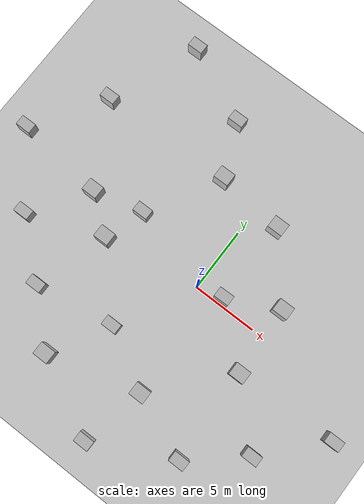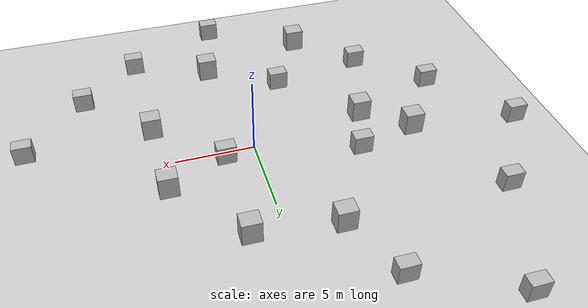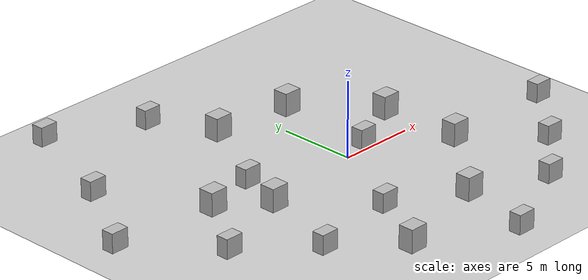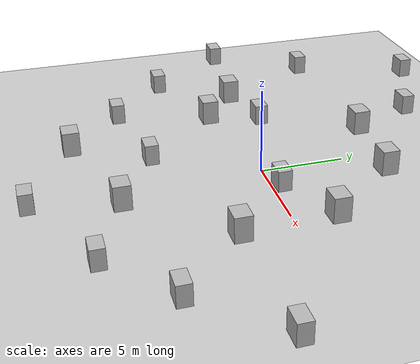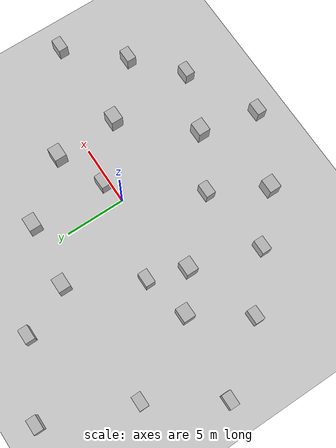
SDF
<sdf version="1.7">
 <world name="default">
  <light name="sun" type="directional">
   <pose>0 0 10 0 -0 0</pose>
   <diffuse>0.8 0.8 0.8 1</diffuse>
   <specular>0.2 0.2 0.2 1</specular>
   <attenuation>
    <range>1000</range>
    <constant>0.9</constant>
    <linear>0.01</linear>
    <quadratic>0.001</quadratic>
   </attenuation>
   <direction>-0.5 0.1 -0.9</direction>
   <spot><inner_angle>0</inner_angle><outer_angle>0</outer_angle><falloff>0</falloff></spot>
  </light>
  <model name="ground_plane">
   <static>1</static>
   <link name="link">
    <collision name="collision">
     <geometry><plane><normal>0 0 1</normal><size>100 100</size></plane></geometry>
     <surface><friction><ode><mu>100</mu><mu2>50</mu2></ode></friction></surface>
    </collision>
    <visual name="visual">
     <cast_shadows>0</cast_shadows>
     <geometry><plane><normal>0 0 1</normal><size>100 100</size></plane></geometry>
     <material>
      <script><uri>file://media/materials/scripts/gazebo.material</uri><name>Gazebo/Grey</name></script>
     </material>
    </visual>
    <kinematic>1</kinematic>
   </link>
  </model>
  <gravity>0 0 -9.8</gravity>
  <magnetic_field>6e-06 2.3e-05 -4.2e-05</magnetic_field>
  <atmosphere type="adiabatic"/>
  <physics type="ode">
   <max_step_size>0.001</max_step_size>
   <real_time_factor>1</real_time_factor>
   <real_time_update_rate>1000</real_time_update_rate>
  </physics>
  <scene><ambient>0.4 0.4 0.4 1</ambient><background>0.7 0.7 0.7 1</background><shadows>1</shadows></scene>
  <spherical_coordinates>
   <surface_model>EARTH_WGS84</surface_model>
   <latitude_deg>0</latitude_deg>
   <longitude_deg>0</longitude_deg>
   <elevation>0</elevation>
   <heading_deg>0</heading_deg>
  </spherical_coordinates>
  <model name="Big box">
   <pose>1.99012 6.88778 0.7495 -0.001246 2e-06 -0.006343</pose>
   <static>0</static>
   <link name="link">
    <inertial>
     <mass>40</mass>
     <inertia><ixx>1</ixx><ixy>0</ixy><ixz>0</ixz><iyy>1</iyy><iyz>0</iyz><izz>1</izz></inertia>
    </inertial>
    <collision name="collision">
     <geometry><box><size>1.2 0.8 1.5</size></box></geometry>
     <surface><contact><ode><max_vel>0.1</max_vel><min_depth>0.001</min_depth></ode></contact></surface>
    </collision>
    <visual name="visual"><geometry><mesh><uri>model://big_box/meshes/big_box.dae</uri></mesh></geometry></visual>
    <kinematic>1</kinematic>
   </link>
  </model>
  <model name="Big box_0">
   <pose>-7.40687 -1.17355 0.749499 0 -0.000832 -2e-06</pose>
   <static>0</static>
   <link name="link">
    <inertial>
     <mass>40</mass>
     <inertia><ixx>1</ixx><ixy>0</ixy><ixz>0</ixz><iyy>1</iyy><iyz>0</iyz><izz>1</izz></inertia>
    </inertial>
    <collision name="collision">
     <geometry><box><size>1.2 0.8 1.5</size></box></geometry>
     <surface><contact><ode><max_vel>0.1</max_vel><min_depth>0.001</min_depth></ode></contact></surface>
    </collision>
    <visual name="visual"><geometry><mesh><uri>model://big_box/meshes/big_box.dae</uri></mesh></geometry></visual>
    <kinematic>1</kinematic>
   </link>
  </model>
  <model name="Big box 4_0">
   <pose>-3.12253 -5.82703 0.624495 0 0.000826 1e-06</pose>
   <static>0</static>
   <link name="link">
    <inertial>
     <mass>40</mass>
     <inertia><ixx>1</ixx><ixy>0</ixy><ixz>0</ixz><iyy>1</iyy><iyz>0</iyz><izz>1</izz></inertia>
    </inertial>
    <collision name="collision">
     <geometry><box><size>1.2 0.8 1.25</size></box></geometry>
     <surface><contact><ode><max_vel>0.1</max_vel><min_depth>0.001</min_depth></ode></contact></surface>
    </collision>
    <visual name="visual">
     <geometry><mesh><uri>model://big_box4/meshes/big_box.dae</uri></mesh></geometry>
    </visual>
    <kinematic>1</kinematic>
   </link>
  </model>
  <model name="Big box_2">
   <pose>-3.25527 7.48275 0.7495 -0 -0.000834 -1e-06</pose>
   <static>0</static>
   <link name="link">
    <inertial>
     <mass>40</mass>
     <inertia><ixx>1</ixx><ixy>0</ixy><ixz>0</ixz><iyy>1</iyy><iyz>0</iyz><izz>1</izz></inertia>
    </inertial>
    <collision name="collision">
     <geometry><box><size>1.2 0.8 1.5</size></box></geometry>
     <surface><contact><ode><max_vel>0.1</max_vel><min_depth>0.001</min_depth></ode></contact></surface>
    </collision>
    <visual name="visual"><geometry><mesh><uri>model://big_box/meshes/big_box.dae</uri></mesh></geometry></visual>
    <kinematic>1</kinematic>
   </link>
  </model>
  <model name="Big box_3">
   <pose>5.98473 -3.05307 0.749497 0 -0.00083 0</pose>
   <static>0</static>
   <link name="link">
    <inertial>
     <mass>40</mass>
     <inertia><ixx>1</ixx><ixy>0</ixy><ixz>0</ixz><iyy>1</iyy><iyz>0</iyz><izz>1</izz></inertia>
    </inertial>
    <collision name="collision">
     <geometry><box><size>1.2 0.8 1.5</size></box></geometry>
     <surface><contact><ode><max_vel>0.1</max_vel><min_depth>0.001</min_depth></ode></contact></surface>
    </collision>
    <visual name="visual"><geometry><mesh><uri>model://big_box/meshes/big_box.dae</uri></mesh></geometry></visual>
    <kinematic>1</kinematic>
   </link>
  </model>
  <model name="Big box_5">
   <pose>5.7655 2.32548 0.749499 0 -0.000832 -1e-06</pose>
   <static>0</static>
   <link name="link">
    <inertial>
     <mass>40</mass>
     <inertia><ixx>1</ixx><ixy>0</ixy><ixz>0</ixz><iyy>1</iyy><iyz>0</iyz><izz>1</izz></inertia>
    </inertial>
    <collision name="collision">
     <geometry><box><size>1.2 0.8 1.5</size></box></geometry>
     <surface><contact><ode><max_vel>0.1</max_vel><min_depth>0.001</min_depth></ode></contact></surface>
    </collision>
    <visual name="visual"><geometry><mesh><uri>model://big_box/meshes/big_box.dae</uri></mesh></geometry></visual>
    <kinematic>1</kinematic>
   </link>
  </model>
  <model name="Big box 4_1">
   <pose>1.93704 0.550406 0.624944 0 8.4e-05 0.013074</pose>
   <static>0</static>
   <link name="link">
    <inertial>
     <mass>40</mass>
     <inertia><ixx>1</ixx><ixy>0</ixy><ixz>0</ixz><iyy>1</iyy><iyz>0</iyz><izz>1</izz></inertia>
    </inertial>
    <collision name="collision">
     <geometry><box><size>1.2 0.8 1.25</size></box></geometry>
     <surface><contact><ode><max_vel>0.1</max_vel><min_depth>0.001</min_depth></ode></contact></surface>
    </collision>
    <visual name="visual">
     <geometry><mesh><uri>model://big_box4/meshes/big_box.dae</uri></mesh></geometry>
    </visual>
    <kinematic>1</kinematic>
   </link>
  </model>
  <model name="Big box_1">
   <pose>1.35057 -8.28272 0.749855 0 -0.000235 0</pose>
   <static>0</static>
   <link name="link">
    <inertial>
     <mass>40</mass>
     <inertia><ixx>1</ixx><ixy>0</ixy><ixz>0</ixz><iyy>1</iyy><iyz>0</iyz><izz>1</izz></inertia>
    </inertial>
    <collision name="collision">
     <geometry><box><size>1.2 0.8 1.5</size></box></geometry>
     <surface><contact><ode><max_vel>0.1</max_vel><min_depth>0.001</min_depth></ode></contact></surface>
    </collision>
    <visual name="visual"><geometry><mesh><uri>model://big_box/meshes/big_box.dae</uri></mesh></geometry></visual>
    <kinematic>1</kinematic>
   </link>
  </model>
  <model name="Big box_6">
   <pose>-10.1846 0.978269 0.749497 0 -0.000828 0</pose>
   <static>0</static>
   <link name="link">
    <inertial>
     <mass>40</mass>
     <inertia><ixx>1</ixx><ixy>0</ixy><ixz>0</ixz><iyy>1</iyy><iyz>0</iyz><izz>1</izz></inertia>
    </inertial>
    <collision name="collision">
     <geometry><box><size>1.2 0.8 1.5</size></box></geometry>
     <surface><contact><ode><max_vel>0.1</max_vel><min_depth>0.001</min_depth></ode></contact></surface>
    </collision>
    <visual name="visual"><geometry><mesh><uri>model://big_box/meshes/big_box.dae</uri></mesh></geometry></visual>
    <kinematic>1</kinematic>
   </link>
  </model>
  <model name="big_box3">
   <pose>-13.6514 7.24682 0.624499 -0 0.000832 -1e-06</pose>
   <static>0</static>
   <link name="link">
    <inertial>
     <mass>40</mass>
     <inertia><ixx>1</ixx><ixy>0</ixy><ixz>0</ixz><iyy>1</iyy><iyz>0</iyz><izz>1</izz></inertia>
    </inertial>
    <collision name="collision">
     <geometry><box><size>1.2 0.8 1.25</size></box></geometry>
     <surface><contact><ode><max_vel>0.1</max_vel><min_depth>0.001</min_depth></ode></contact></surface>
    </collision>
    <visual name="visual">
     <geometry><mesh><uri>model://big_box3/meshes/big_box.dae</uri></mesh></geometry>
    </visual>
    <kinematic>1</kinematic>
   </link>
  </model>
  <model name="big_box3_0">
   <pose>-13.1688 -3.30244 0.624496 -0 0.000828 -1e-06</pose>
   <static>0</static>
   <link name="link">
    <inertial>
     <mass>40</mass>
     <inertia><ixx>1</ixx><ixy>0</ixy><ixz>0</ixz><iyy>1</iyy><iyz>0</iyz><izz>1</izz></inertia>
    </inertial>
    <collision name="collision">
     <geometry><box><size>1.2 0.8 1.25</size></box></geometry>
     <surface><contact><ode><max_vel>0.1</max_vel><min_depth>0.001</min_depth></ode></contact></surface>
    </collision>
    <visual name="visual">
     <geometry><mesh><uri>model://big_box3/meshes/big_box.dae</uri></mesh></geometry>
    </visual>
    <kinematic>1</kinematic>
   </link>
  </model>
  <model name="Big box 4">
   <pose>-17.132 1.7807 0.6245 0 0.000833 -2e-06</pose>
   <static>0</static>
   <link name="link">
    <inertial>
     <mass>40</mass>
     <inertia><ixx>1</ixx><ixy>0</ixy><ixz>0</ixz><iyy>1</iyy><iyz>0</iyz><izz>1</izz></inertia>
    </inertial>
    <collision name="collision">
     <geometry><box><size>1.2 0.8 1.25</size></box></geometry>
     <surface><contact><ode><max_vel>0.1</max_vel><min_depth>0.001</min_depth></ode></contact></surface>
    </collision>
    <visual name="visual">
     <geometry><mesh><uri>model://big_box4/meshes/big_box.dae</uri></mesh></geometry>
    </visual>
    <kinematic>1</kinematic>
   </link>
  </model>
  <model name="Big box_7">
   <pose>-5.56204 -10.1721 0.749499 0 -0.000832 -1e-06</pose>
   <static>0</static>
   <link name="link">
    <inertial>
     <mass>40</mass>
     <inertia><ixx>1</ixx><ixy>0</ixy><ixz>0</ixz><iyy>1</iyy><iyz>0</iyz><izz>1</izz></inertia>
    </inertial>
    <collision name="collision">
     <geometry><box><size>1.2 0.8 1.5</size></box></geometry>
     <surface><contact><ode><max_vel>0.1</max_vel><min_depth>0.001</min_depth></ode></contact></surface>
    </collision>
    <visual name="visual"><geometry><mesh><uri>model://big_box/meshes/big_box.dae</uri></mesh></geometry></visual>
    <kinematic>1</kinematic>
   </link>
  </model>
  <model name="big_box3_1">
   <pose>0.296011 -13.1597 0.624497 -0 0.000828 -2e-06</pose>
   <static>0</static>
   <link name="link">
    <inertial>
     <mass>40</mass>
     <inertia><ixx>1</ixx><ixy>0</ixy><ixz>0</ixz><iyy>1</iyy><iyz>0</iyz><izz>1</izz></inertia>
    </inertial>
    <collision name="collision">
     <geometry><box><size>1.2 0.8 1.25</size></box></geometry>
     <surface><contact><ode><max_vel>0.1</max_vel><min_depth>0.001</min_depth></ode></contact></surface>
    </collision>
    <visual name="visual">
     <geometry><mesh><uri>model://big_box3/meshes/big_box.dae</uri></mesh></geometry>
    </visual>
    <kinematic>1</kinematic>
   </link>
  </model>
  <model name="big_box3_2">
   <pose>6.23307 -10.2493 0.624527 0 0.00078 -2e-06</pose>
   <static>0</static>
   <link name="link">
    <inertial>
     <mass>40</mass>
     <inertia><ixx>1</ixx><ixy>0</ixy><ixz>0</ixz><iyy>1</iyy><iyz>0</iyz><izz>1</izz></inertia>
    </inertial>
    <collision name="collision">
     <geometry><box><size>1.2 0.8 1.25</size></box></geometry>
     <surface><contact><ode><max_vel>0.1</max_vel><min_depth>0.001</min_depth></ode></contact></surface>
    </collision>
    <visual name="visual">
     <geometry><mesh><uri>model://big_box3/meshes/big_box.dae</uri></mesh></geometry>
    </visual>
    <kinematic>1</kinematic>
   </link>
  </model>
  <model name="Big box 4_2">
   <pose>-9.13819 -6.8166 0.624572 0 0.000712 -2e-06</pose>
   <static>0</static>
   <link name="link">
    <inertial>
     <mass>40</mass>
     <inertia><ixx>1</ixx><ixy>0</ixy><ixz>0</ixz><iyy>1</iyy><iyz>0</iyz><izz>1</izz></inertia>
    </inertial>
    <collision name="collision">
     <geometry><box><size>1.2 0.8 1.25</size></box></geometry>
     <surface><contact><ode><max_vel>0.1</max_vel><min_depth>0.001</min_depth></ode></contact></surface>
    </collision>
    <visual name="visual">
     <geometry><mesh><uri>model://big_box4/meshes/big_box.dae</uri></mesh></geometry>
    </visual>
    <kinematic>1</kinematic>
   </link>
  </model>
  <model name="big_box3_3">
   <pose>9.98731 -7.00246 0.624612 0 0.000638 -2e-06</pose>
   <static>0</static>
   <link name="link">
    <inertial>
     <mass>40</mass>
     <inertia><ixx>1</ixx><ixy>0</ixy><ixz>0</ixz><iyy>1</iyy><iyz>0</iyz><izz>1</izz></inertia>
    </inertial>
    <collision name="collision">
     <geometry><box><size>1.2 0.8 1.25</size></box></geometry>
     <surface><contact><ode><max_vel>0.1</max_vel><min_depth>0.001</min_depth></ode></contact></surface>
    </collision>
    <visual name="visual">
     <geometry><mesh><uri>model://big_box3/meshes/big_box.dae</uri></mesh></geometry>
    </visual>
    <kinematic>1</kinematic>
   </link>
  </model>
  <model name="big_box3_4">
   <pose>13.8494 -2.82371 0.624657 0 0.000571 -2e-06</pose>
   <static>0</static>
   <link name="link">
    <inertial>
     <mass>40</mass>
     <inertia><ixx>1</ixx><ixy>0</ixy><ixz>0</ixz><iyy>1</iyy><iyz>0</iyz><izz>1</izz></inertia>
    </inertial>
    <collision name="collision">
     <geometry><box><size>1.2 0.8 1.25</size></box></geometry>
     <surface><contact><ode><max_vel>0.1</max_vel><min_depth>0.001</min_depth></ode></contact></surface>
    </collision>
    <visual name="visual">
     <geometry><mesh><uri>model://big_box3/meshes/big_box.dae</uri></mesh></geometry>
    </visual>
    <kinematic>1</kinematic>
   </link>
  </model>
  <model name="big_box3_5">
   <pose>-5.07518 11.5954 0.624866 -0 0.000211 -1e-06</pose>
   <static>0</static>
   <link name="link">
    <inertial>
     <mass>40</mass>
     <inertia><ixx>1</ixx><ixy>0</ixy><ixz>0</ixz><iyy>1</iyy><iyz>0</iyz><izz>1</izz></inertia>
    </inertial>
    <collision name="collision">
     <geometry><box><size>1.2 0.8 1.25</size></box></geometry>
     <surface><contact><ode><max_vel>0.1</max_vel><min_depth>0.001</min_depth></ode></contact></surface>
    </collision>
    <visual name="visual">
     <geometry><mesh><uri>model://big_box3/meshes/big_box.dae</uri></mesh></geometry>
    </visual>
    <kinematic>1</kinematic>
   </link>
  </model>
  <model name="big_box3_6">
   <pose>-10.8889 14.3605 0.62495 0 6.9e-05 0</pose>
   <static>0</static>
   <link name="link">
    <inertial>
     <mass>40</mass>
     <inertia><ixx>1</ixx><ixy>0</ixy><ixz>0</ixz><iyy>1</iyy><iyz>0</iyz><izz>1</izz></inertia>
    </inertial>
    <collision name="collision">
     <geometry><box><size>1.2 0.8 1.25</size></box></geometry>
     <surface><contact><ode><max_vel>0.1</max_vel><min_depth>0.001</min_depth></ode></contact></surface>
    </collision>
    <visual name="visual">
     <geometry><mesh><uri>model://big_box3/meshes/big_box.dae</uri></mesh></geometry>
    </visual>
    <kinematic>1</kinematic>
   </link>
  </model>
  <model name="big_box3_7">
   <pose>-6.40206 1.92782 0.62495 0 6.9e-05 0</pose>
   <static>0</static>
   <link name="link">
    <inertial>
     <mass>40</mass>
     <inertia><ixx>1</ixx><ixy>0</ixy><ixz>0</ixz><iyy>1</iyy><iyz>0</iyz><izz>1</izz></inertia>
    </inertial>
    <collision name="collision">
     <geometry><box><size>1.2 0.8 1.25</size></box></geometry>
     <surface><contact><ode><max_vel>0.1</max_vel><min_depth>0.001</min_depth></ode></contact></surface>
    </collision>
    <visual name="visual">
     <geometry><mesh><uri>model://big_box3/meshes/big_box.dae</uri></mesh></geometry>
    </visual>
   </link>
  </model>
 </world>
</sdf>
